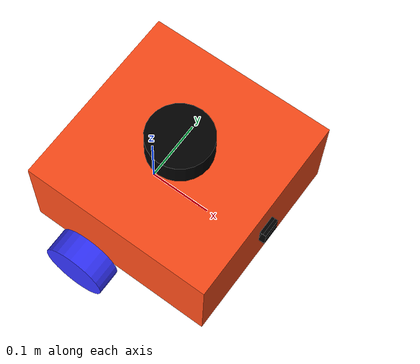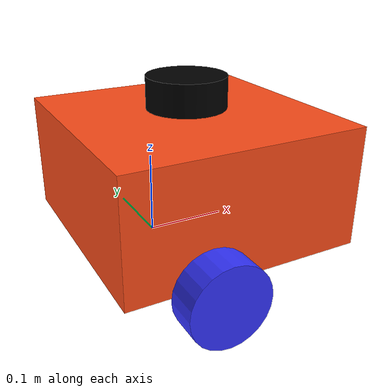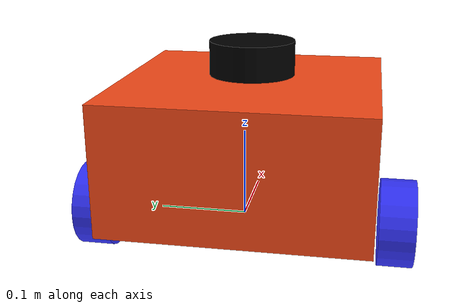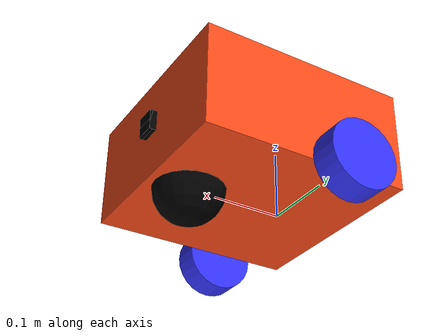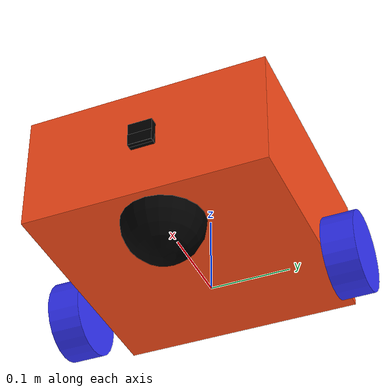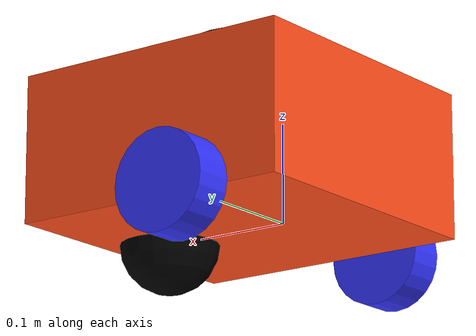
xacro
<?xml version="1.0"?>
<robot xmlns:xacro="http://www.ros.org/wiki/xacro" name="rd_bot_1.0M"  >

    <xacro:include filename="$(find mobile_bot)/urdf/robot_core.xacro"/>
   <xacro:include filename="$(find mobile_bot)/urdf/gazebo_control.xacro"/>
    <xacro:include filename="$(find mobile_bot)/urdf/lidar.xacro"/>
    <xacro:include filename="$(find mobile_bot)/urdf/camera.xacro"/>
    <xacro:include filename="$(find mobile_bot)/urdf/camera_depth.xacro"/>
</robot>

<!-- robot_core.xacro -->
<robot xmlns:xacro="http://www.ros.org/wiki/xacro" >

    <xacro:include filename="inertial_macros.xacro"/>

    <material name="white">
        <color rgba="1 1 1 1" />
    </material>

    <material name="orange">
        <color rgba="1 0.3 0.1 1"/>
    </material>

    <material name="blue">
        <color rgba="0.2 0.2 1 1"/>
    </material>

    <material name="black">
        <color rgba="0 0 0 1"/>
    </material>

    <!-- BASE LINK -->

    <link name="base_link">

    </link>
<joint name="base_footprint_joint" type="fixed">
        <parent link="base_link"/>
        <child link="base_footprint"/>
        <origin xyz="0 0 0"/>
    </joint>
<link name="base_footprint">

    </link>

    <!-- CHASSIS LINK -->

    <joint name="chassis_joint" type="fixed">
        <parent link="base_link"/>
        <child link="chassis"/>
        <origin xyz="-0.1 0 0"/>
    </joint>

    <link name="chassis">
        <visual>
            <origin xyz="0.15 0 0.075"/>
            <geometry>
                <box size="0.3 0.3 0.15"/>
            </geometry>
            <material name="orange"/>
        </visual>
        <collision>
            <origin xyz="0.15 0 0.075"/>
            <geometry>
                <box size="0.3 0.3 0.15"/>
            </geometry>
        </collision>
        <xacro:inertial_box mass="0.5" x="0.3" y="0.3" z="0.15">
            <origin xyz="0.15 0 0.075" rpy="0 0 0"/>
        </xacro:inertial_box>
    </link>
    <gazebo reference="chassis">
      <material>
        Gazebo/Orange
      </material>
    </gazebo>
    <!-- LEFT WHEEL LINK -->

    <joint name="left_wheel_joint" type="continuous">
        <parent link="base_link"/>
        <child link="left_wheel"/>
        <origin xyz="0 0.175 0" rpy="-${pi/2} 0 0" />
        <axis xyz="0 0 1"/>
    </joint>

    <link name="left_wheel">
        <visual>
            <geometry>
                <cylinder radius="0.05" length="0.04"/>
            </geometry>
            <material name="blue"/>
        </visual>
        <collision>
            <geometry>
                <cylinder radius="0.05" length="0.04"/>
            </geometry>
        </collision>
        <xacro:inertial_cylinder mass="0.1" length="0.04" radius="0.05">
            <origin xyz="0 0 0" rpy="0 0 0"/>
        </xacro:inertial_cylinder>
    </link>
    <gazebo reference="left_wheel">
      <material>
        Gazebo/Black
      </material>
    </gazebo>

    <!-- RIGHT WHEEL LINK -->

    <joint name="right_wheel_joint" type="continuous">
        <parent link="base_link"/>
        <child link="right_wheel"/>
        <origin xyz="0 -0.175 0" rpy="${pi/2} 0 0" />
        <axis xyz="0 0 -1"/>
    </joint>

    <link name="right_wheel">
        <visual>
            <geometry>
                <cylinder radius="0.05" length="0.04"/>
            </geometry>
            <material name="blue"/>
        </visual>
        <collision>
            <geometry>
                <cylinder radius="0.05" length="0.04"/>
            </geometry>
        </collision>
        <xacro:inertial_cylinder mass="0.1" length="0.04" radius="0.05">
            <origin xyz="0 0 0" rpy="0 0 0"/>
        </xacro:inertial_cylinder>
    </link>
   <gazebo reference="right_wheel">
      <material>
        Gazebo/Black
      </material>
    </gazebo>
    <!-- CASTER WHEEL LINK -->

    <joint name="caster_wheel_joint" type="fixed">
        <parent link="chassis"/>
        <child link="caster_wheel"/>
        <origin xyz="0.24 0 0"/>
    </joint>

    <link name="caster_wheel">
        <visual>
            <geometry>
                <sphere radius="0.05"/>
            </geometry>
            <material name="black"/>
        </visual>
        <collision>
            <geometry>
                <sphere radius="0.05"/>
            </geometry>
        </collision>
        <xacro:inertial_sphere mass="0.1" radius="0.05">
            <origin xyz="0 0 0" rpy="0 0 0"/>
        </xacro:inertial_sphere>
    </link>
    <gazebo reference="caster_wheel">
      <material>
        Gazebo/White
      </material>
      <mu1 value="0.001"/>
      <mu2 value="0.001"/>
    </gazebo>

</robot>

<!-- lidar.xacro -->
<robot xmlns:xacro="http://www.ros.org/wiki/xacro">

<joint name="lidar_joint" type="fixed">
    <parent link="chassis"/>
    <child link="lidar_frame"/>
    <origin xyz="0.15 0.0 0.175" rpy="0.0 0.0 0.0"/>
</joint>
<link name="lidar_frame">
      <visual>
            <geometry>
                <cylinder radius="0.05" length="0.04"/>
            </geometry>
            <material name="black"/>
        </visual>
        <collision>
            <geometry>
                <cylinder radius="0.05" length="0.04"/>
            </geometry>
        </collision>
        <xacro:inertial_cylinder mass="0.1" length="0.04" radius="0.05">
            <origin xyz="0 0 0" rpy="0 0 0"/>
        </xacro:inertial_cylinder>
</link>
<gazebo reference="lidar_frame">
<sensor name="laser" type="ray">
   <pose>0 0 0 0 0 0</pose>
   <visualize>true</visualize>
    <update_rate>10</update_rate>

    <ray>
    <scan>
      <horizontal>
       <samples>360</samples>
       <resolution>1</resolution>
       <min_angle>-3.14</min_angle>
       <max_angle>3.14</max_angle>
      </horizontal>
    </scan>
    <range>
      <min>0.3</min>
      <max>12</max>
       <resolution>0.01</resolution>
    </range>
    </ray>
    <plugin name ="lidar_controller" filename="libgazebo_ros_laser.so">

    <topicName>scan</topicName>

  <frameName>lidar_frame</frameName>

    </plugin>

</sensor>

</gazebo>
</robot>

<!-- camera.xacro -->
<robot xmlns:xacro="http://www.ros.org/wiki/xacro">

<joint name="camera_joint" type="fixed">
    <parent link="chassis"/>
    <child link="camera_link"/>
    <origin xyz="0.305 0.0 0.08" rpy="0.0 0.018 0.0"/>
</joint>
<link name="camera_link">
      <visual>
            <geometry>
               <box size="0.010 0.03 0.03"/>
            </geometry>
            <material name="black"/>
        </visual>

</link>
<joint name="camera_opticcal_joint" type="fixed">
    <parent link="camera_link"/>
    <child link="camera_optical_link"/>
    <origin xyz="0 0.0 0.0" rpy="${-pi/2} 0.0 ${-pi/2}"/>
</joint>
<link name="camera_optical_link">
</link>

<gazebo reference="camera_link">
  <sensor type="camera" name="camera">
  <pose>0 0 0 0 0 0</pose>
      <always_on>true</always_on>
      <visualize>false</visualize>
      <updateRate>10</updateRate>
      <camera>
          <horizontal_fov>1.089</horizontal_fov>
          <image>
              <width>640</width>
              <height>480</height>
              <format>R8G8B8</format>
          </image>

          <clip>
              <near>0.05</near>
              <far>10</far>
          </clip>
      </camera>
 <plugin name="camera_controller" filename="libgazebo_ros_camera.so">

        <frameName>camera_optical_link</frameName>

      </plugin>
    </sensor>

</gazebo>
</robot>

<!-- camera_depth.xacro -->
<robot xmlns:xacro="http://www.ros.org/wiki/xacro">

<joint name="camera_depth_joint" type="fixed">
    <parent link="chassis"/>
    <child link="camera_depth_link"/>
    <origin xyz="0.305 0.0 0.08" rpy="0.0 0.0 0.0"/>
</joint>
<link name="camera_depth_link">
      <visual>
            <geometry>
               <box size="0.010 0.03 0.03"/>
            </geometry>
            <material name="black"/>
        </visual>

</link>
<joint name="camera_optical_depth_joint" type="fixed">
    <parent link="camera_depth_link"/>
    <child link="camera_optical_depth_link"/>
    <origin xyz="0 0.0 0.0" rpy="${-pi/2} 0.0 ${-pi/2}"/>
</joint>
<link name="camera_optical_depth_link">
</link>

<gazebo reference="camera_depth_link">
  <sensor type="depth" name="camera_depth">
  <pose>0 0 0 0 0 0</pose>
      <always_on>true</always_on>
      <visualize>true</visualize>
      <updateRate>10</updateRate>
      <camera>
          <horizontal_fov>1.089</horizontal_fov>
          <image>
              <width>640</width>
              <height>480</height>
              <format>R8G8B8</format>
          </image>

          <clip>
              <near>0.05</near>
              <far>10</far>
          </clip>
      </camera>

 <plugin name="camera_depth_controller" filename="libgazebo_ros_openni_kinect.so">
          <baseline>0.2</baseline>
        <alwaysOn>true</alwaysOn>
        <updateRate>30.0</updateRate>
        <cameraName>camera</cameraName>
        <frameName>camera_optical_depth_link</frameName>
         <imageTopicName>rgb/image_raw</imageTopicName>
        <depthImageTopicName>depth/image_raw</depthImageTopicName>
        <pointCloudTopicName>depth/points</pointCloudTopicName>
        <cameraInfoTopicName>rgb/camera_info</cameraInfoTopicName>
        <depthImageCameraInfoTopicName>depth/camera_info</depthImageCameraInfoTopicName>
        <pointCloudCutoff>0.4</pointCloudCutoff>
            <hackBaseline>0.07</hackBaseline>
            <distortionK1>0.0</distortionK1>
            <distortionK2>0.0</distortionK2>
            <distortionK3>0.0</distortionK3>
            <distortionT1>0.0</distortionT1>
            <distortionT2>0.0</distortionT2>
        <CxPrime>0.0</CxPrime>
        <Cx>0.0</Cx>
        <Cy>0.0</Cy>
        <focalLength>0</focalLength>
        <hackBaseline>0</hackBaseline>
        <min_depth>0.1</min_depth>
        <max_depth>100</max_depth>

      </plugin>
    </sensor>

</gazebo>
</robot>
